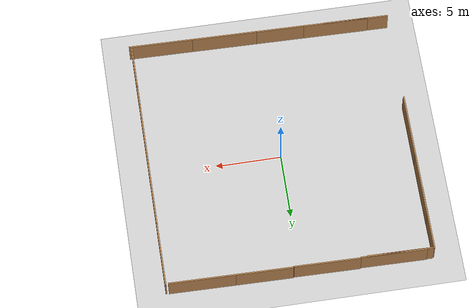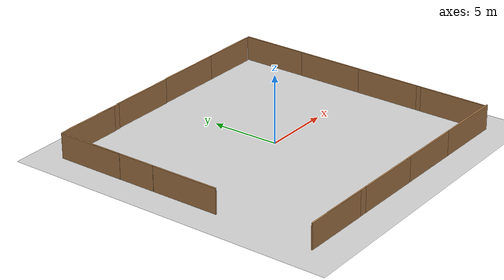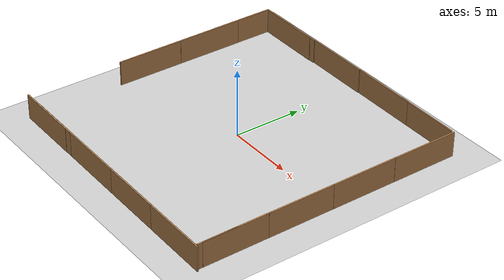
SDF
<sdf version="1.7">
 <world name="default">
  <light name="sun" type="directional">
   <pose>0 0 10 0 -0 0</pose>
   <diffuse>0.8 0.8 0.8 1</diffuse>
   <specular>0.1 0.1 0.1 1</specular>
   <attenuation>
    <range>1000</range>
    <constant>0.9</constant>
    <linear>0.01</linear>
    <quadratic>0.001</quadratic>
   </attenuation>
   <direction>-0.5 0.5 -1</direction>
   <spot><inner_angle>0</inner_angle><outer_angle>0</outer_angle><falloff>0</falloff></spot>
  </light>
  <model name="ground_plane">
   <static>1</static>
   <link name="link">
    <collision name="collision">
     <geometry><plane><normal>0 0 1</normal><size>100 100</size></plane></geometry>
     <surface><friction><ode><mu>100</mu><mu2>50</mu2></ode></friction></surface>
    </collision>
    <visual name="visual">
     <cast_shadows>0</cast_shadows>
     <geometry><plane><normal>0 0 1</normal><size>100 100</size></plane></geometry>
     <material>
      <script><uri>file://media/materials/scripts/gazebo.material</uri><name>Gazebo/Grey</name></script>
     </material>
    </visual>
   </link>
  </model>
  <gravity>0 0 -9.8</gravity>
  <magnetic_field>6e-06 2.3e-05 -4.2e-05</magnetic_field>
  <atmosphere type="adiabatic"/>
  <physics name="default_physics" default="0" type="ode">
   <max_step_size>0.001</max_step_size>
   <real_time_factor>1</real_time_factor>
   <real_time_update_rate>1000</real_time_update_rate>
  </physics>
  <scene><ambient>0.4 0.4 0.4 1</ambient><background>0.7 0.7 0.7 1</background><shadows>1</shadows></scene>
  <spherical_coordinates>
   <surface_model>EARTH_WGS84</surface_model>
   <latitude_deg>0</latitude_deg>
   <longitude_deg>0</longitude_deg>
   <elevation>0</elevation>
   <heading_deg>0</heading_deg>
  </spherical_coordinates>
  <model name="fence">
   <static>1</static>
   <link name="link">
    <pose>0 0 0.915 0 -0 0</pose>
    <collision name="collision"><geometry><box><size>0.1 5 1.83</size></box></geometry></collision>
    <visual name="visual">
     <cast_shadows>0</cast_shadows>
     <geometry><box><size>0.1 5 1.83</size></box></geometry>
     <material>
      <script>
       <uri>https://fuel.gazebosim.org/1.0/athackst/models/fence/2/files/materials/scripts</uri>
       <uri>https://fuel.gazebosim.org/1.0/athackst/models/fence/2/files/materials/textures</uri>
       <name>Fence/WoodBoarding</name>
      </script>
     </material>
    </visual>
   </link>
   <pose>-9.89372 -0.30785 0 0 -0 0</pose>
  </model>
  <model name="fence_clone">
   <static>1</static>
   <link name="link">
    <pose>0 0 0.915 0 -0 0</pose>
    <collision name="collision"><geometry><box><size>0.1 5 1.83</size></box></geometry></collision>
    <visual name="visual">
     <cast_shadows>0</cast_shadows>
     <geometry><box><size>0.1 5 1.83</size></box></geometry>
     <material>
      <script>
       <uri>https://fuel.gazebosim.org/1.0/athackst/models/fence/2/files/materials/scripts</uri>
       <uri>https://fuel.gazebosim.org/1.0/athackst/models/fence/2/files/materials/textures</uri>
       <name>Fence/WoodBoarding</name>
      </script>
     </material>
    </visual>
   </link>
   <pose>-9.89568 4.70582 0 0 -0 0</pose>
  </model>
  <model name="fence_clone_0">
   <static>1</static>
   <link name="link">
    <pose>0 0 0.915 0 -0 0</pose>
    <collision name="collision"><geometry><box><size>0.1 5 1.83</size></box></geometry></collision>
    <visual name="visual">
     <cast_shadows>0</cast_shadows>
     <geometry><box><size>0.1 5 1.83</size></box></geometry>
     <material>
      <script>
       <uri>https://fuel.gazebosim.org/1.0/athackst/models/fence/2/files/materials/scripts</uri>
       <uri>https://fuel.gazebosim.org/1.0/athackst/models/fence/2/files/materials/textures</uri>
       <name>Fence/WoodBoarding</name>
      </script>
     </material>
    </visual>
   </link>
   <pose>-9.9057 7.46242 0 0 -0 0</pose>
  </model>
  <model name="fence_clone_1">
   <static>1</static>
   <link name="link">
    <pose>0 0 0.915 0 -0 0</pose>
    <collision name="collision"><geometry><box><size>0.1 5 1.83</size></box></geometry></collision>
    <visual name="visual">
     <cast_shadows>0</cast_shadows>
     <geometry><box><size>0.1 5 1.83</size></box></geometry>
     <material>
      <script>
       <uri>https://fuel.gazebosim.org/1.0/athackst/models/fence/2/files/materials/scripts</uri>
       <uri>https://fuel.gazebosim.org/1.0/athackst/models/fence/2/files/materials/textures</uri>
       <name>Fence/WoodBoarding</name>
      </script>
     </material>
    </visual>
   </link>
   <pose>10.0636 7.36821 0 0 -0 0</pose>
  </model>
  <model name="fence_clone_2">
   <static>1</static>
   <link name="link">
    <pose>0 0 0.915 0 -0 0</pose>
    <collision name="collision"><geometry><box><size>0.1 5 1.83</size></box></geometry></collision>
    <visual name="visual">
     <cast_shadows>0</cast_shadows>
     <geometry><box><size>0.1 5 1.83</size></box></geometry>
     <material>
      <script>
       <uri>https://fuel.gazebosim.org/1.0/athackst/models/fence/2/files/materials/scripts</uri>
       <uri>https://fuel.gazebosim.org/1.0/athackst/models/fence/2/files/materials/textures</uri>
       <name>Fence/WoodBoarding</name>
      </script>
     </material>
    </visual>
   </link>
   <pose>10.056 2.45698 0 0 -0 0</pose>
  </model>
  <model name="fence_clone_3">
   <static>1</static>
   <link name="link">
    <pose>0 0 0.915 0 -0 0</pose>
    <collision name="collision"><geometry><box><size>0.1 5 1.83</size></box></geometry></collision>
    <visual name="visual">
     <cast_shadows>0</cast_shadows>
     <geometry><box><size>0.1 5 1.83</size></box></geometry>
     <material>
      <script>
       <uri>https://fuel.gazebosim.org/1.0/athackst/models/fence/2/files/materials/scripts</uri>
       <uri>https://fuel.gazebosim.org/1.0/athackst/models/fence/2/files/materials/textures</uri>
       <name>Fence/WoodBoarding</name>
      </script>
     </material>
    </visual>
   </link>
   <pose>10.05 -2.48927 0 0 -0 0</pose>
  </model>
  <model name="fence_clone_4">
   <static>1</static>
   <link name="link">
    <pose>0 0 0.915 0 -0 0</pose>
    <collision name="collision"><geometry><box><size>0.1 5 1.83</size></box></geometry></collision>
    <visual name="visual">
     <cast_shadows>0</cast_shadows>
     <geometry><box><size>0.1 5 1.83</size></box></geometry>
     <material>
      <script>
       <uri>https://fuel.gazebosim.org/1.0/athackst/models/fence/2/files/materials/scripts</uri>
       <uri>https://fuel.gazebosim.org/1.0/athackst/models/fence/2/files/materials/textures</uri>
       <name>Fence/WoodBoarding</name>
      </script>
     </material>
    </visual>
   </link>
   <pose>10.0459 -7.31564 0 0 -0 0</pose>
  </model>
  <model name="fence_clone_5">
   <static>1</static>
   <link name="link">
    <pose>0 0 0.915 0 -0 0</pose>
    <collision name="collision"><geometry><box><size>0.1 5 1.83</size></box></geometry></collision>
    <visual name="visual">
     <cast_shadows>0</cast_shadows>
     <geometry><box><size>0.1 5 1.83</size></box></geometry>
     <material>
      <script>
       <uri>https://fuel.gazebosim.org/1.0/athackst/models/fence/2/files/materials/scripts</uri>
       <uri>https://fuel.gazebosim.org/1.0/athackst/models/fence/2/files/materials/textures</uri>
       <name>Fence/WoodBoarding</name>
      </script>
     </material>
    </visual>
   </link>
   <pose>10.04 -7.666 0 0 -0 0</pose>
  </model>
  <model name="fence_clone_6">
   <static>1</static>
   <link name="link">
    <pose>0 0 0.915 0 -0 0</pose>
    <collision name="collision"><geometry><box><size>0.1 5 1.83</size></box></geometry></collision>
    <visual name="visual">
     <cast_shadows>0</cast_shadows>
     <geometry><box><size>0.1 5 1.83</size></box></geometry>
     <material>
      <script>
       <uri>https://fuel.gazebosim.org/1.0/athackst/models/fence/2/files/materials/scripts</uri>
       <uri>https://fuel.gazebosim.org/1.0/athackst/models/fence/2/files/materials/textures</uri>
       <name>Fence/WoodBoarding</name>
      </script>
     </material>
    </visual>
   </link>
   <pose>7.74359 -10.2293 -0 0 0 -1.58413</pose>
  </model>
  <model name="fence_clone_6_clone">
   <static>1</static>
   <link name="link">
    <pose>0 0 0.915 0 -0 0</pose>
    <collision name="collision"><geometry><box><size>0.1 5 1.83</size></box></geometry></collision>
    <visual name="visual">
     <cast_shadows>0</cast_shadows>
     <geometry><box><size>0.1 5 1.83</size></box></geometry>
     <material>
      <script>
       <uri>https://fuel.gazebosim.org/1.0/athackst/models/fence/2/files/materials/scripts</uri>
       <uri>https://fuel.gazebosim.org/1.0/athackst/models/fence/2/files/materials/textures</uri>
       <name>Fence/WoodBoarding</name>
      </script>
     </material>
    </visual>
   </link>
   <pose>2.8432 -10.1621 -0 0 0 -1.58413</pose>
  </model>
  <model name="fence_clone_6_clone_0">
   <static>1</static>
   <link name="link">
    <pose>0 0 0.915 0 -0 0</pose>
    <collision name="collision"><geometry><box><size>0.1 5 1.83</size></box></geometry></collision>
    <visual name="visual">
     <cast_shadows>0</cast_shadows>
     <geometry><box><size>0.1 5 1.83</size></box></geometry>
     <material>
      <script>
       <uri>https://fuel.gazebosim.org/1.0/athackst/models/fence/2/files/materials/scripts</uri>
       <uri>https://fuel.gazebosim.org/1.0/athackst/models/fence/2/files/materials/textures</uri>
       <name>Fence/WoodBoarding</name>
      </script>
     </material>
    </visual>
   </link>
   <pose>-1.83838 -10.102 -0 0 0 -1.58413</pose>
  </model>
  <model name="fence_clone_6_clone_1">
   <static>1</static>
   <link name="link">
    <pose>0 0 0.915 0 -0 0</pose>
    <collision name="collision"><geometry><box><size>0.1 5 1.83</size></box></geometry></collision>
    <visual name="visual">
     <cast_shadows>0</cast_shadows>
     <geometry><box><size>0.1 5 1.83</size></box></geometry>
     <material>
      <script>
       <uri>https://fuel.gazebosim.org/1.0/athackst/models/fence/2/files/materials/scripts</uri>
       <uri>https://fuel.gazebosim.org/1.0/athackst/models/fence/2/files/materials/textures</uri>
       <name>Fence/WoodBoarding</name>
      </script>
     </material>
    </visual>
   </link>
   <pose>-5.84292 -10.048 -0 0 0 -1.58413</pose>
  </model>
  <model name="fence_clone_6_clone_2">
   <static>1</static>
   <link name="link">
    <pose>0 0 0.915 0 -0 0</pose>
    <collision name="collision"><geometry><box><size>0.1 5 1.83</size></box></geometry></collision>
    <visual name="visual">
     <cast_shadows>0</cast_shadows>
     <geometry><box><size>0.1 5 1.83</size></box></geometry>
     <material>
      <script>
       <uri>https://fuel.gazebosim.org/1.0/athackst/models/fence/2/files/materials/scripts</uri>
       <uri>https://fuel.gazebosim.org/1.0/athackst/models/fence/2/files/materials/textures</uri>
       <name>Fence/WoodBoarding</name>
      </script>
     </material>
    </visual>
   </link>
   <pose>-7.42735 -10.0411 -0 0 0 -1.58413</pose>
  </model>
  <model name="fence_clone_6_clone_3">
   <static>1</static>
   <link name="link">
    <pose>0 0 0.915 0 -0 0</pose>
    <collision name="collision"><geometry><box><size>0.1 5 1.83</size></box></geometry></collision>
    <visual name="visual">
     <cast_shadows>0</cast_shadows>
     <geometry><box><size>0.1 5 1.83</size></box></geometry>
     <material>
      <script>
       <uri>https://fuel.gazebosim.org/1.0/athackst/models/fence/2/files/materials/scripts</uri>
       <uri>https://fuel.gazebosim.org/1.0/athackst/models/fence/2/files/materials/textures</uri>
       <name>Fence/WoodBoarding</name>
      </script>
     </material>
    </visual>
   </link>
   <pose>7.37253 9.86478 -0 0 0 -1.58413</pose>
  </model>
  <model name="fence_clone_6_clone_4">
   <static>1</static>
   <link name="link">
    <pose>0 0 0.915 0 -0 0</pose>
    <collision name="collision"><geometry><box><size>0.1 5 1.83</size></box></geometry></collision>
    <visual name="visual">
     <cast_shadows>0</cast_shadows>
     <geometry><box><size>0.1 5 1.83</size></box></geometry>
     <material>
      <script>
       <uri>https://fuel.gazebosim.org/1.0/athackst/models/fence/2/files/materials/scripts</uri>
       <uri>https://fuel.gazebosim.org/1.0/athackst/models/fence/2/files/materials/textures</uri>
       <name>Fence/WoodBoarding</name>
      </script>
     </material>
    </visual>
   </link>
   <pose>3.0991 9.9186 -0 0 0 -1.58413</pose>
  </model>
  <model name="fence_clone_6_clone_5">
   <static>1</static>
   <link name="link">
    <pose>0 0 0.915 0 -0 0</pose>
    <collision name="collision"><geometry><box><size>0.1 5 1.83</size></box></geometry></collision>
    <visual name="visual">
     <cast_shadows>0</cast_shadows>
     <geometry><box><size>0.1 5 1.83</size></box></geometry>
     <material>
      <script>
       <uri>https://fuel.gazebosim.org/1.0/athackst/models/fence/2/files/materials/scripts</uri>
       <uri>https://fuel.gazebosim.org/1.0/athackst/models/fence/2/files/materials/textures</uri>
       <name>Fence/WoodBoarding</name>
      </script>
     </material>
    </visual>
   </link>
   <pose>-1.92904 9.94278 -0 0 0 -1.58413</pose>
  </model>
  <model name="fence_clone_6_clone_6">
   <static>1</static>
   <link name="link">
    <pose>0 0 0.915 0 -0 0</pose>
    <collision name="collision"><geometry><box><size>0.1 5 1.83</size></box></geometry></collision>
    <visual name="visual">
     <cast_shadows>0</cast_shadows>
     <geometry><box><size>0.1 5 1.83</size></box></geometry>
     <material>
      <script>
       <uri>https://fuel.gazebosim.org/1.0/athackst/models/fence/2/files/materials/scripts</uri>
       <uri>https://fuel.gazebosim.org/1.0/athackst/models/fence/2/files/materials/textures</uri>
       <name>Fence/WoodBoarding</name>
      </script>
     </material>
    </visual>
   </link>
   <pose>-6.89076 9.95644 -0 0 0 -1.58413</pose>
  </model>
  <model name="fence_clone_6_clone_7">
   <static>1</static>
   <link name="link">
    <pose>0 0 0.915 0 -0 0</pose>
    <collision name="collision"><geometry><box><size>0.1 5 1.83</size></box></geometry></collision>
    <visual name="visual">
     <cast_shadows>0</cast_shadows>
     <geometry><box><size>0.1 5 1.83</size></box></geometry>
     <material>
      <script>
       <uri>https://fuel.gazebosim.org/1.0/athackst/models/fence/2/files/materials/scripts</uri>
       <uri>https://fuel.gazebosim.org/1.0/athackst/models/fence/2/files/materials/textures</uri>
       <name>Fence/WoodBoarding</name>
      </script>
     </material>
    </visual>
   </link>
   <pose>-7.37701 9.926 -0 0 0 -1.58413</pose>
  </model>
 </world>
</sdf>
